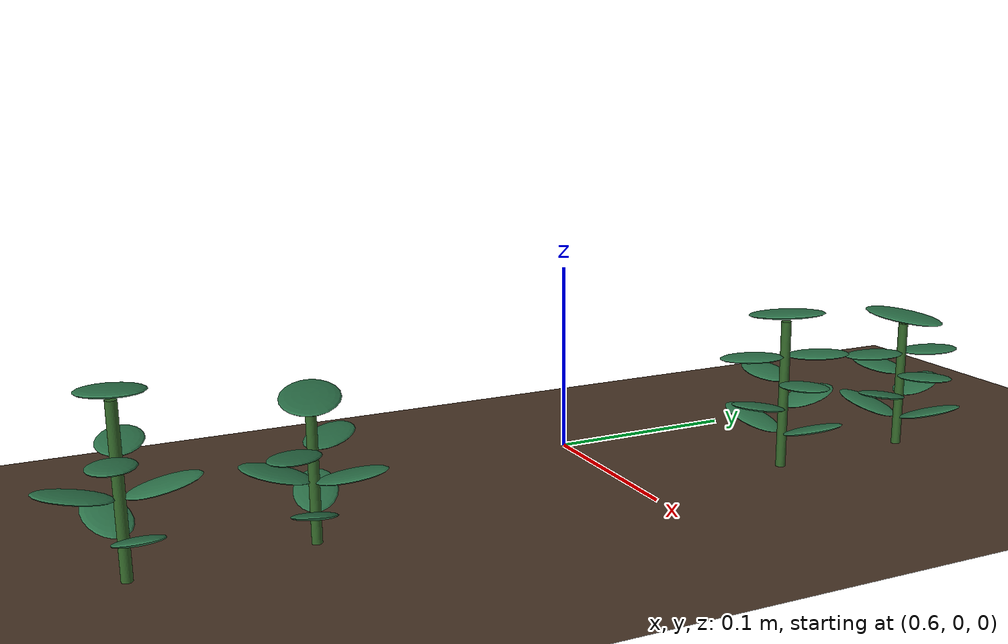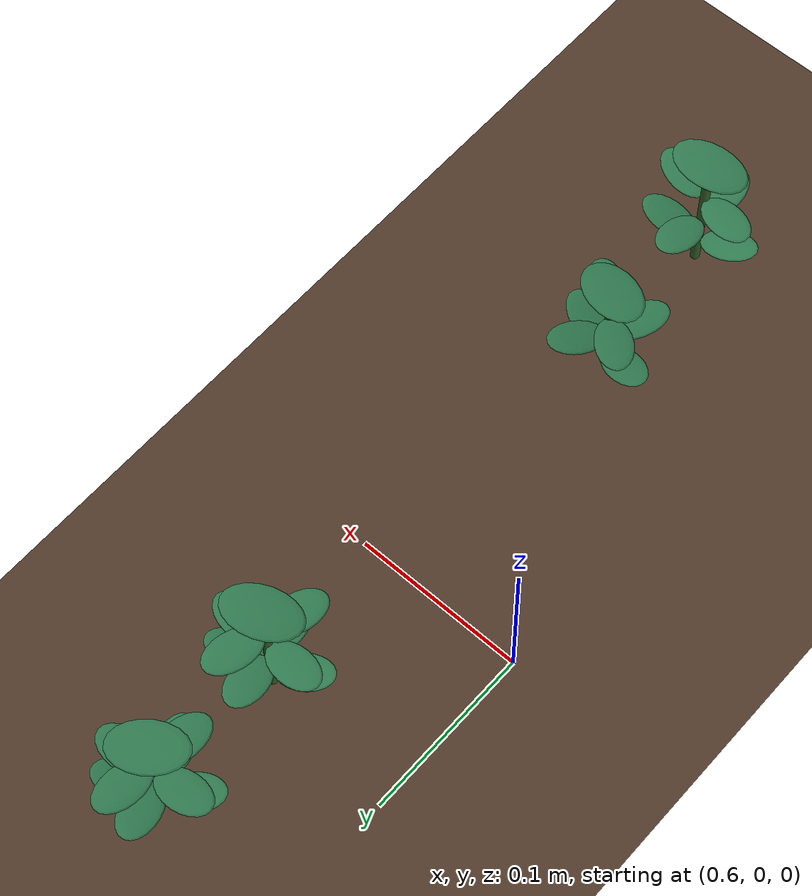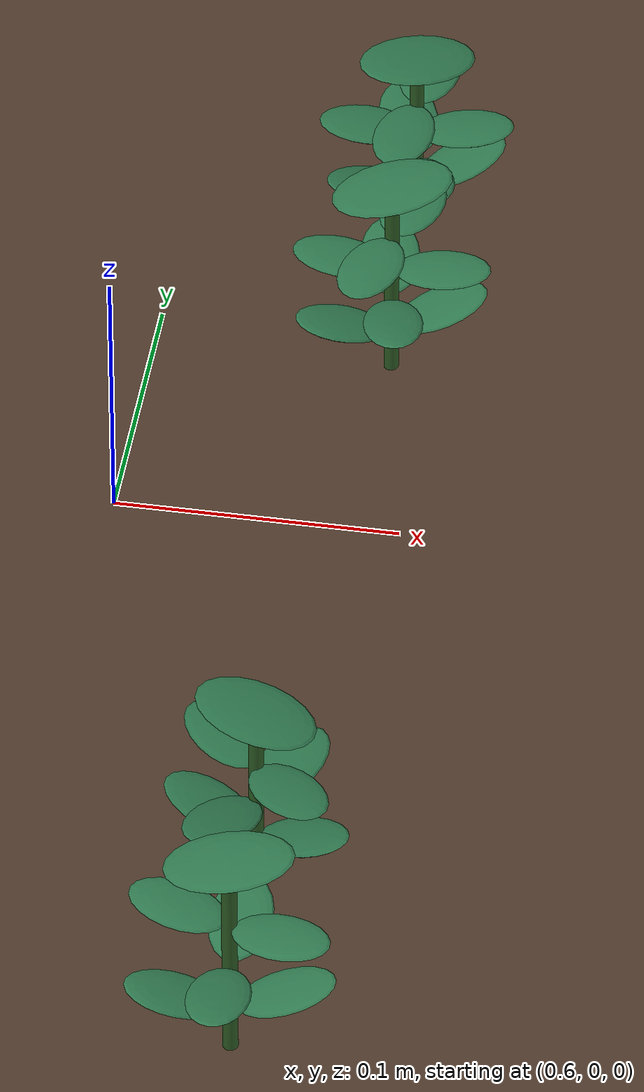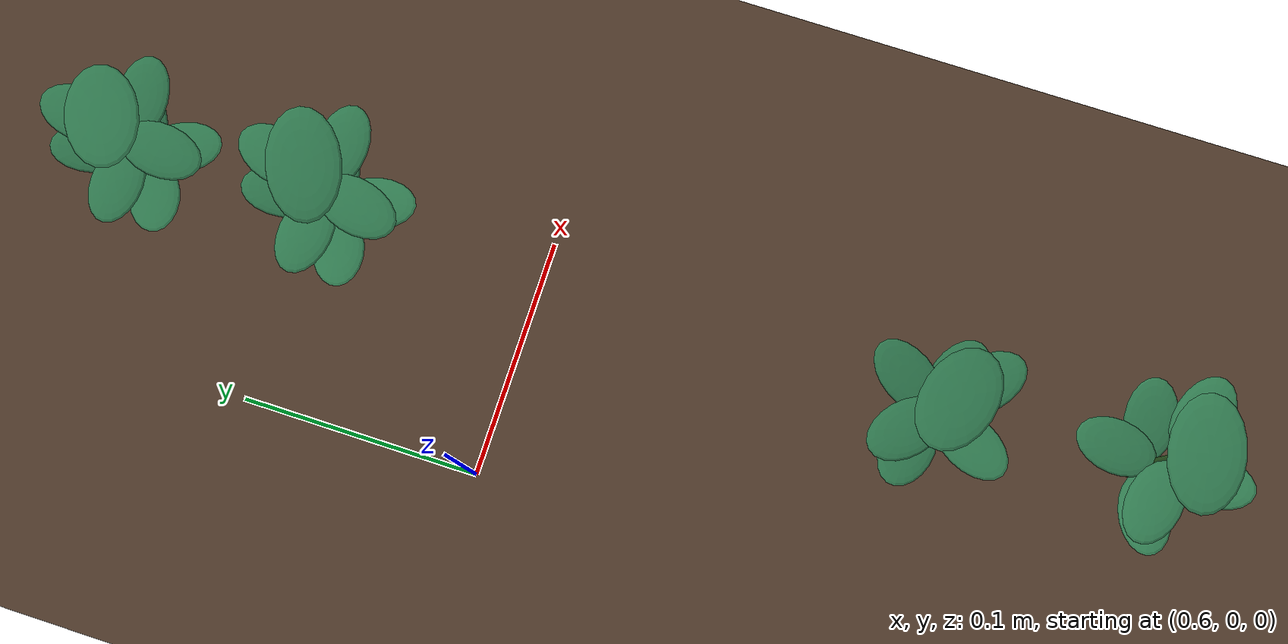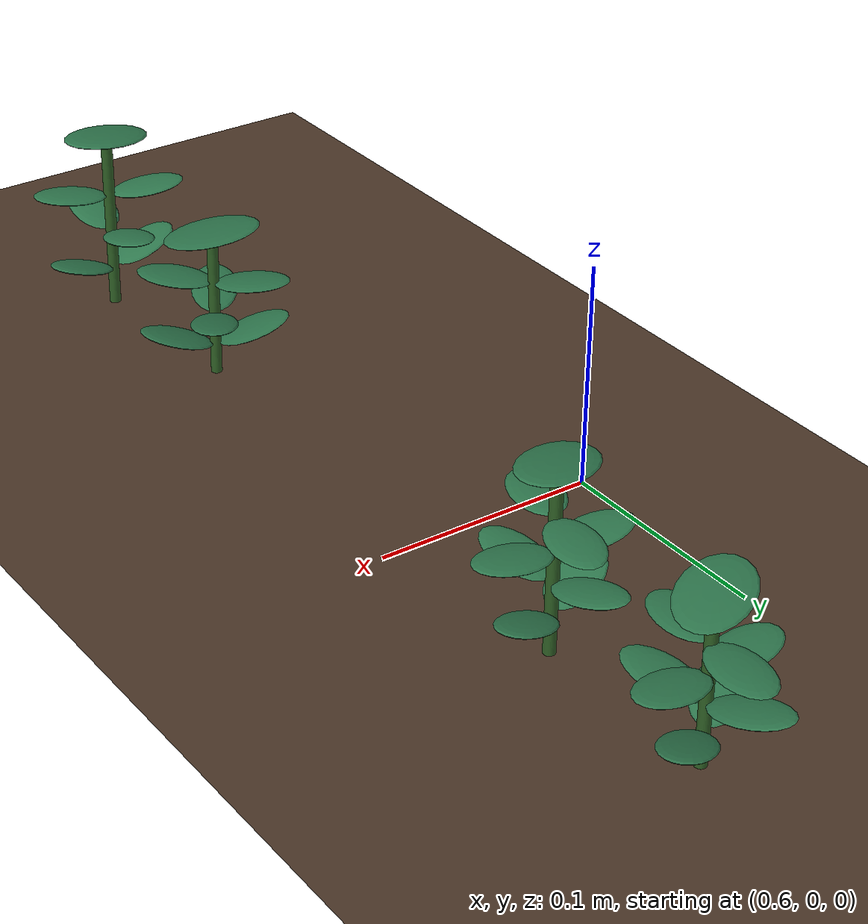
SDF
<sdf version="1.9">
 <world name="jim_field">
  <model name="ground_plane">
   <static>true</static>
   <link name="link">
    <collision name="collision">
     <geometry><plane><normal>0 0 1</normal><size>40 40</size></plane></geometry>
    </collision>
    <visual name="visual">
     <geometry><plane><normal>0 0 1</normal><size>40 40</size></plane></geometry>
     <material>
      <ambient>0.20 0.15 0.11 1</ambient>
      <diffuse>0.30 0.22 0.16 1</diffuse>
      <specular>0.01 0.01 0.01 1</specular>
     </material>
    </visual>
   </link>
  </model>
  <model name="field">
   <static>true</static>
   <pose>0.1837 -0.2516 0 0 0 0</pose>
   <model name="crop_101">
    <static>true</static>
    <pose>0.4985 0.0010 0 0 0 0</pose>
    <link name="link">
     <visual name="stem">
      <pose>0 0 0.0400 0 0 0</pose>
      <geometry><cylinder><radius>0.0026</radius><length>0.0800</length></cylinder></geometry>
      <material>
       <ambient>0.10 0.22 0.09 1</ambient>
       <diffuse>0.20 0.40 0.16 1</diffuse>
       <specular>0.05 0.06 0.05 1</specular>
      </material>
     </visual>
     <visual name="leaflet_0_0">
      <pose>0.0180 0.0033 0.0240 0 -0.300 0.1802</pose>
      <geometry><ellipsoid><radii>0.0170 0.0105 0.0016</radii></ellipsoid></geometry>
      <material>
       <ambient>0.096 0.243 0.144 1</ambient>
       <diffuse>0.181 0.465 0.300 1</diffuse>
       <specular>0.05 0.06 0.05 1</specular>
      </material>
     </visual>
     <visual name="leaflet_0_1">
      <pose>-0.0180 -0.0033 0.0240 0 -0.300 3.3218</pose>
      <geometry><ellipsoid><radii>0.0170 0.0105 0.0016</radii></ellipsoid></geometry>
      <material>
       <ambient>0.096 0.243 0.144 1</ambient>
       <diffuse>0.181 0.465 0.300 1</diffuse>
       <specular>0.05 0.06 0.05 1</specular>
      </material>
     </visual>
     <visual name="leaflet_1_0">
      <pose>0.0007 0.0183 0.0406 0 -0.200 1.5302</pose>
      <geometry><ellipsoid><radii>0.0170 0.0105 0.0016</radii></ellipsoid></geometry>
      <material>
       <ambient>0.096 0.243 0.144 1</ambient>
       <diffuse>0.181 0.465 0.300 1</diffuse>
       <specular>0.05 0.06 0.05 1</specular>
      </material>
     </visual>
     <visual name="leaflet_1_1">
      <pose>-0.0007 -0.0183 0.0406 0 -0.200 4.6718</pose>
      <geometry><ellipsoid><radii>0.0170 0.0105 0.0016</radii></ellipsoid></geometry>
      <material>
       <ambient>0.096 0.243 0.144 1</ambient>
       <diffuse>0.181 0.465 0.300 1</diffuse>
       <specular>0.05 0.06 0.05 1</specular>
      </material>
     </visual>
     <visual name="leaflet_2_0">
      <pose>-0.0176 0.0047 0.0571 0 -0.100 2.8802</pose>
      <geometry><ellipsoid><radii>0.0170 0.0105 0.0016</radii></ellipsoid></geometry>
      <material>
       <ambient>0.096 0.243 0.144 1</ambient>
       <diffuse>0.181 0.465 0.300 1</diffuse>
       <specular>0.05 0.06 0.05 1</specular>
      </material>
     </visual>
     <visual name="leaflet_2_1">
      <pose>0.0176 -0.0047 0.0571 0 -0.100 6.0218</pose>
      <geometry><ellipsoid><radii>0.0170 0.0105 0.0016</radii></ellipsoid></geometry>
      <material>
       <ambient>0.096 0.243 0.144 1</ambient>
       <diffuse>0.181 0.465 0.300 1</diffuse>
       <specular>0.05 0.06 0.05 1</specular>
      </material>
     </visual>
     <visual name="leaflet_terminal">
      <pose>0 0 0.0840 0 -0.12 0.1802</pose>
      <geometry><ellipsoid><radii>0.0215 0.0140 0.0018</radii></ellipsoid></geometry>
      <material>
       <ambient>0.096 0.243 0.144 1</ambient>
       <diffuse>0.181 0.465 0.300 1</diffuse>
       <specular>0.05 0.06 0.05 1</specular>
      </material>
     </visual>
    </link>
   </model>
   <model name="crop_118">
    <static>true</static>
    <pose>0.4934 0.0857 0 0 0 0</pose>
    <link name="link">
     <visual name="stem">
      <pose>0 0 0.0323 0 0 0</pose>
      <geometry><cylinder><radius>0.0025</radius><length>0.0647</length></cylinder></geometry>
      <material>
       <ambient>0.10 0.22 0.09 1</ambient>
       <diffuse>0.20 0.40 0.16 1</diffuse>
       <specular>0.05 0.06 0.05 1</specular>
      </material>
     </visual>
     <visual name="leaflet_0_0">
      <pose>-0.0166 0.0054 0.0194 0 -0.300 2.8292</pose>
      <geometry><ellipsoid><radii>0.0170 0.0105 0.0016</radii></ellipsoid></geometry>
      <material>
       <ambient>0.088 0.230 0.134 1</ambient>
       <diffuse>0.166 0.439 0.282 1</diffuse>
       <specular>0.05 0.06 0.05 1</specular>
      </material>
     </visual>
     <visual name="leaflet_0_1">
      <pose>0.0166 -0.0054 0.0194 0 -0.300 5.9708</pose>
      <geometry><ellipsoid><radii>0.0170 0.0105 0.0016</radii></ellipsoid></geometry>
      <material>
       <ambient>0.088 0.230 0.134 1</ambient>
       <diffuse>0.166 0.439 0.282 1</diffuse>
       <specular>0.05 0.06 0.05 1</specular>
      </material>
     </visual>
     <visual name="leaflet_1_0">
      <pose>-0.0089 -0.0150 0.0328 0 -0.200 4.1792</pose>
      <geometry><ellipsoid><radii>0.0170 0.0105 0.0016</radii></ellipsoid></geometry>
      <material>
       <ambient>0.088 0.230 0.134 1</ambient>
       <diffuse>0.166 0.439 0.282 1</diffuse>
       <specular>0.05 0.06 0.05 1</specular>
      </material>
     </visual>
     <visual name="leaflet_1_1">
      <pose>0.0089 0.0150 0.0328 0 -0.200 7.3208</pose>
      <geometry><ellipsoid><radii>0.0170 0.0105 0.0016</radii></ellipsoid></geometry>
      <material>
       <ambient>0.088 0.230 0.134 1</ambient>
       <diffuse>0.166 0.439 0.282 1</diffuse>
       <specular>0.05 0.06 0.05 1</specular>
      </material>
     </visual>
     <visual name="leaflet_2_0">
      <pose>0.0127 -0.0119 0.0461 0 -0.100 5.5292</pose>
      <geometry><ellipsoid><radii>0.0170 0.0105 0.0016</radii></ellipsoid></geometry>
      <material>
       <ambient>0.088 0.230 0.134 1</ambient>
       <diffuse>0.166 0.439 0.282 1</diffuse>
       <specular>0.05 0.06 0.05 1</specular>
      </material>
     </visual>
     <visual name="leaflet_2_1">
      <pose>-0.0127 0.0119 0.0461 0 -0.100 8.6708</pose>
      <geometry><ellipsoid><radii>0.0170 0.0105 0.0016</radii></ellipsoid></geometry>
      <material>
       <ambient>0.088 0.230 0.134 1</ambient>
       <diffuse>0.166 0.439 0.282 1</diffuse>
       <specular>0.05 0.06 0.05 1</specular>
      </material>
     </visual>
     <visual name="leaflet_terminal">
      <pose>0 0 0.0687 0 -0.12 2.8292</pose>
      <geometry><ellipsoid><radii>0.0215 0.0140 0.0018</radii></ellipsoid></geometry>
      <material>
       <ambient>0.088 0.230 0.134 1</ambient>
       <diffuse>0.166 0.439 0.282 1</diffuse>
       <specular>0.05 0.06 0.05 1</specular>
      </material>
     </visual>
    </link>
   </model>
   <model name="crop_169">
    <static>true</static>
    <pose>0.5004 0.3376 0 0 0 0</pose>
    <link name="link">
     <visual name="stem">
      <pose>0 0 0.0392 0 0 0</pose>
      <geometry><cylinder><radius>0.0026</radius><length>0.0783</length></cylinder></geometry>
      <material>
       <ambient>0.10 0.22 0.09 1</ambient>
       <diffuse>0.20 0.40 0.16 1</diffuse>
       <specular>0.05 0.06 0.05 1</specular>
      </material>
     </visual>
     <visual name="leaflet_0_0">
      <pose>0.0168 0.0070 0.0235 0 -0.300 0.3970</pose>
      <geometry><ellipsoid><radii>0.0170 0.0105 0.0016</radii></ellipsoid></geometry>
      <material>
       <ambient>0.095 0.241 0.143 1</ambient>
       <diffuse>0.179 0.462 0.298 1</diffuse>
       <specular>0.05 0.06 0.05 1</specular>
      </material>
     </visual>
     <visual name="leaflet_0_1">
      <pose>-0.0168 -0.0070 0.0235 0 -0.300 3.5386</pose>
      <geometry><ellipsoid><radii>0.0170 0.0105 0.0016</radii></ellipsoid></geometry>
      <material>
       <ambient>0.095 0.241 0.143 1</ambient>
       <diffuse>0.179 0.462 0.298 1</diffuse>
       <specular>0.05 0.06 0.05 1</specular>
      </material>
     </visual>
     <visual name="leaflet_1_0">
      <pose>-0.0032 0.0179 0.0356 0 -0.200 1.7470</pose>
      <geometry><ellipsoid><radii>0.0170 0.0105 0.0016</radii></ellipsoid></geometry>
      <material>
       <ambient>0.095 0.241 0.143 1</ambient>
       <diffuse>0.179 0.462 0.298 1</diffuse>
       <specular>0.05 0.06 0.05 1</specular>
      </material>
     </visual>
     <visual name="leaflet_1_1">
      <pose>0.0032 -0.0179 0.0356 0 -0.200 4.8886</pose>
      <geometry><ellipsoid><radii>0.0170 0.0105 0.0016</radii></ellipsoid></geometry>
      <material>
       <ambient>0.095 0.241 0.143 1</ambient>
       <diffuse>0.179 0.462 0.298 1</diffuse>
       <specular>0.05 0.06 0.05 1</specular>
      </material>
     </visual>
     <visual name="leaflet_2_0">
      <pose>-0.0182 0.0008 0.0478 0 -0.100 3.0970</pose>
      <geometry><ellipsoid><radii>0.0170 0.0105 0.0016</radii></ellipsoid></geometry>
      <material>
       <ambient>0.095 0.241 0.143 1</ambient>
       <diffuse>0.179 0.462 0.298 1</diffuse>
       <specular>0.05 0.06 0.05 1</specular>
      </material>
     </visual>
     <visual name="leaflet_2_1">
      <pose>0.0182 -0.0008 0.0478 0 -0.100 6.2386</pose>
      <geometry><ellipsoid><radii>0.0170 0.0105 0.0016</radii></ellipsoid></geometry>
      <material>
       <ambient>0.095 0.241 0.143 1</ambient>
       <diffuse>0.179 0.462 0.298 1</diffuse>
       <specular>0.05 0.06 0.05 1</specular>
      </material>
     </visual>
     <visual name="leaflet_3_0">
      <pose>-0.0048 -0.0175 0.0599 0 0.000 4.4470</pose>
      <geometry><ellipsoid><radii>0.0170 0.0105 0.0016</radii></ellipsoid></geometry>
      <material>
       <ambient>0.095 0.241 0.143 1</ambient>
       <diffuse>0.179 0.462 0.298 1</diffuse>
       <specular>0.05 0.06 0.05 1</specular>
      </material>
     </visual>
     <visual name="leaflet_3_1">
      <pose>0.0048 0.0175 0.0599 0 0.000 7.5886</pose>
      <geometry><ellipsoid><radii>0.0170 0.0105 0.0016</radii></ellipsoid></geometry>
      <material>
       <ambient>0.095 0.241 0.143 1</ambient>
       <diffuse>0.179 0.462 0.298 1</diffuse>
       <specular>0.05 0.06 0.05 1</specular>
      </material>
     </visual>
     <visual name="leaflet_terminal">
      <pose>0 0 0.0823 0 -0.12 0.3970</pose>
      <geometry><ellipsoid><radii>0.0215 0.0140 0.0018</radii></ellipsoid></geometry>
      <material>
       <ambient>0.095 0.241 0.143 1</ambient>
       <diffuse>0.179 0.462 0.298 1</diffuse>
       <specular>0.05 0.06 0.05 1</specular>
      </material>
     </visual>
    </link>
   </model>
   <model name="crop_186">
    <static>true</static>
    <pose>0.4971 0.4189 0 0 0 0</pose>
    <link name="link">
     <visual name="stem">
      <pose>0 0 0.0341 0 0 0</pose>
      <geometry><cylinder><radius>0.0025</radius><length>0.0683</length></cylinder></geometry>
      <material>
       <ambient>0.10 0.22 0.09 1</ambient>
       <diffuse>0.20 0.40 0.16 1</diffuse>
       <specular>0.05 0.06 0.05 1</specular>
      </material>
     </visual>
     <visual name="leaflet_0_0">
      <pose>-0.0152 -0.0090 0.0205 0 -0.300 3.6761</pose>
      <geometry><ellipsoid><radii>0.0170 0.0105 0.0016</radii></ellipsoid></geometry>
      <material>
       <ambient>0.091 0.236 0.138 1</ambient>
       <diffuse>0.173 0.451 0.290 1</diffuse>
       <specular>0.05 0.06 0.05 1</specular>
      </material>
     </visual>
     <visual name="leaflet_0_1">
      <pose>0.0152 0.0090 0.0205 0 -0.300 6.8177</pose>
      <geometry><ellipsoid><radii>0.0170 0.0105 0.0016</radii></ellipsoid></geometry>
      <material>
       <ambient>0.091 0.236 0.138 1</ambient>
       <diffuse>0.173 0.451 0.290 1</diffuse>
       <specular>0.05 0.06 0.05 1</specular>
      </material>
     </visual>
     <visual name="leaflet_1_0">
      <pose>0.0054 -0.0168 0.0311 0 -0.200 5.0261</pose>
      <geometry><ellipsoid><radii>0.0170 0.0105 0.0016</radii></ellipsoid></geometry>
      <material>
       <ambient>0.091 0.236 0.138 1</ambient>
       <diffuse>0.173 0.451 0.290 1</diffuse>
       <specular>0.05 0.06 0.05 1</specular>
      </material>
     </visual>
     <visual name="leaflet_1_1">
      <pose>-0.0054 0.0168 0.0311 0 -0.200 8.1677</pose>
      <geometry><ellipsoid><radii>0.0170 0.0105 0.0016</radii></ellipsoid></geometry>
      <material>
       <ambient>0.091 0.236 0.138 1</ambient>
       <diffuse>0.173 0.451 0.290 1</diffuse>
       <specular>0.05 0.06 0.05 1</specular>
      </material>
     </visual>
     <visual name="leaflet_2_0">
      <pose>0.0176 0.0016 0.0416 0 -0.100 6.3761</pose>
      <geometry><ellipsoid><radii>0.0170 0.0105 0.0016</radii></ellipsoid></geometry>
      <material>
       <ambient>0.091 0.236 0.138 1</ambient>
       <diffuse>0.173 0.451 0.290 1</diffuse>
       <specular>0.05 0.06 0.05 1</specular>
      </material>
     </visual>
     <visual name="leaflet_2_1">
      <pose>-0.0176 -0.0016 0.0416 0 -0.100 9.5177</pose>
      <geometry><ellipsoid><radii>0.0170 0.0105 0.0016</radii></ellipsoid></geometry>
      <material>
       <ambient>0.091 0.236 0.138 1</ambient>
       <diffuse>0.173 0.451 0.290 1</diffuse>
       <specular>0.05 0.06 0.05 1</specular>
      </material>
     </visual>
     <visual name="leaflet_3_0">
      <pose>0.0022 0.0175 0.0522 0 0.000 7.7261</pose>
      <geometry><ellipsoid><radii>0.0170 0.0105 0.0016</radii></ellipsoid></geometry>
      <material>
       <ambient>0.091 0.236 0.138 1</ambient>
       <diffuse>0.173 0.451 0.290 1</diffuse>
       <specular>0.05 0.06 0.05 1</specular>
      </material>
     </visual>
     <visual name="leaflet_3_1">
      <pose>-0.0022 -0.0175 0.0522 0 0.000 10.8677</pose>
      <geometry><ellipsoid><radii>0.0170 0.0105 0.0016</radii></ellipsoid></geometry>
      <material>
       <ambient>0.091 0.236 0.138 1</ambient>
       <diffuse>0.173 0.451 0.290 1</diffuse>
       <specular>0.05 0.06 0.05 1</specular>
      </material>
     </visual>
     <visual name="leaflet_terminal">
      <pose>0 0 0.0723 0 -0.12 3.6761</pose>
      <geometry><ellipsoid><radii>0.0215 0.0140 0.0018</radii></ellipsoid></geometry>
      <material>
       <ambient>0.091 0.236 0.138 1</ambient>
       <diffuse>0.173 0.451 0.290 1</diffuse>
       <specular>0.05 0.06 0.05 1</specular>
      </material>
     </visual>
    </link>
   </model>
  </model>
 </world>
</sdf>
